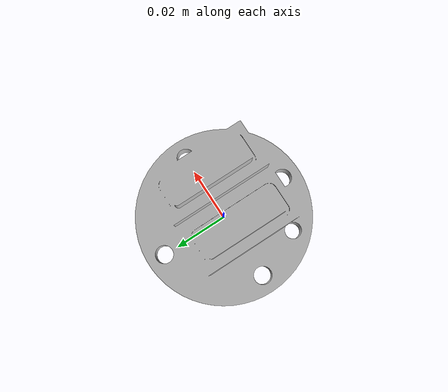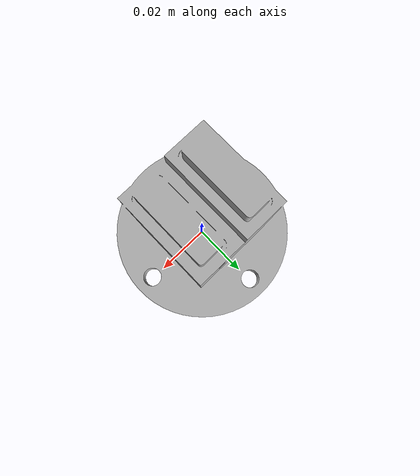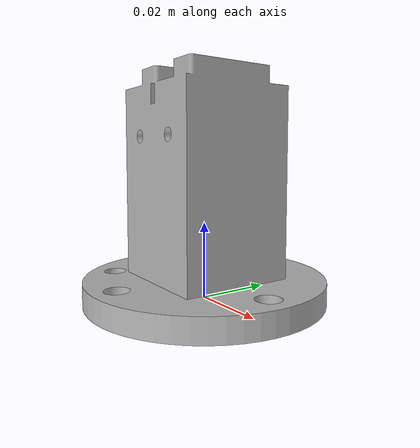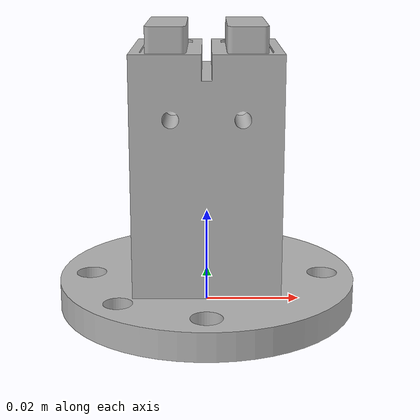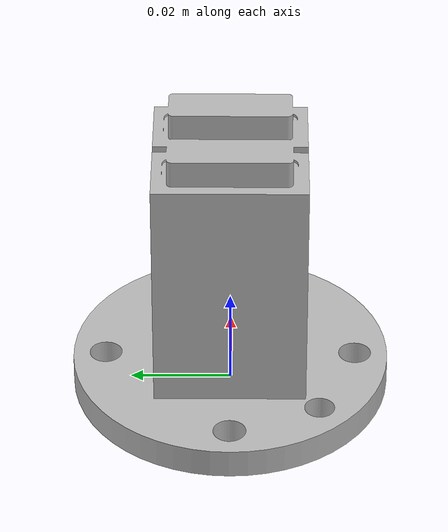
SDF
<?xml version="1.0"?>
<sdf version="1.6">
  <model name="End Model">
    <static>true</static>
    <link name="end_link">
    <collision name="your_collision_name">
      <geometry>
        <mesh>
          <uri>model://end_model/meshes/end.dae</uri>
        </mesh>
      </geometry>
    </collision>
      <visual name="head_visual">
        <pose>0 0 0 0 0 0</pose>
        <geometry>
          <mesh>
            <uri>model://end_model/meshes/end.dae</uri>
          </mesh>
        </geometry>
      </visual>
    </link>
  </model>
</sdf>
